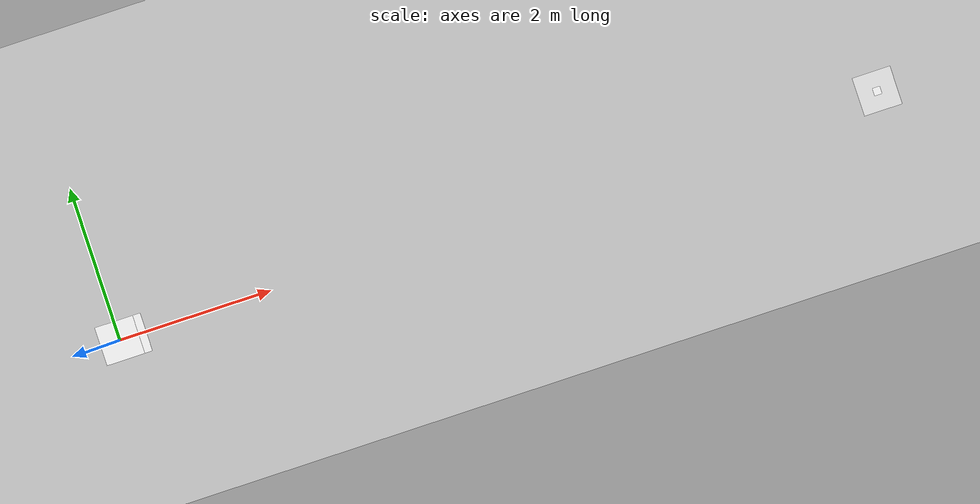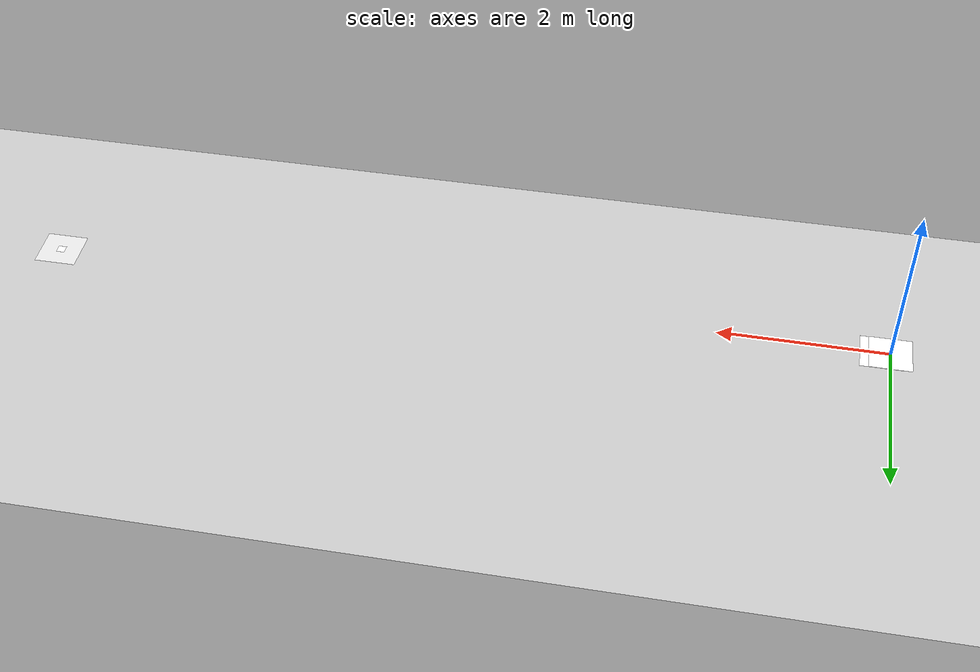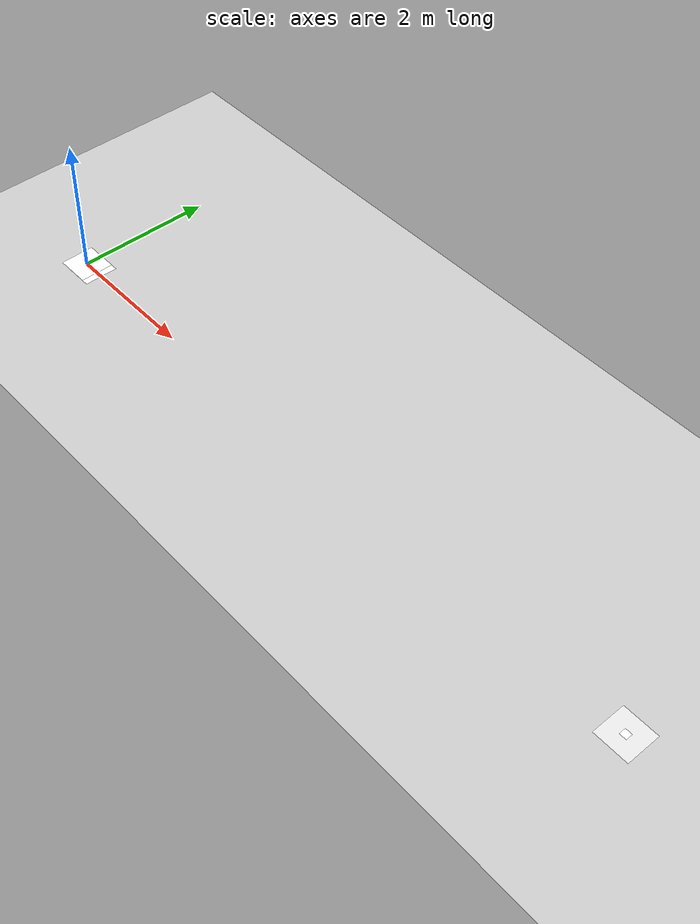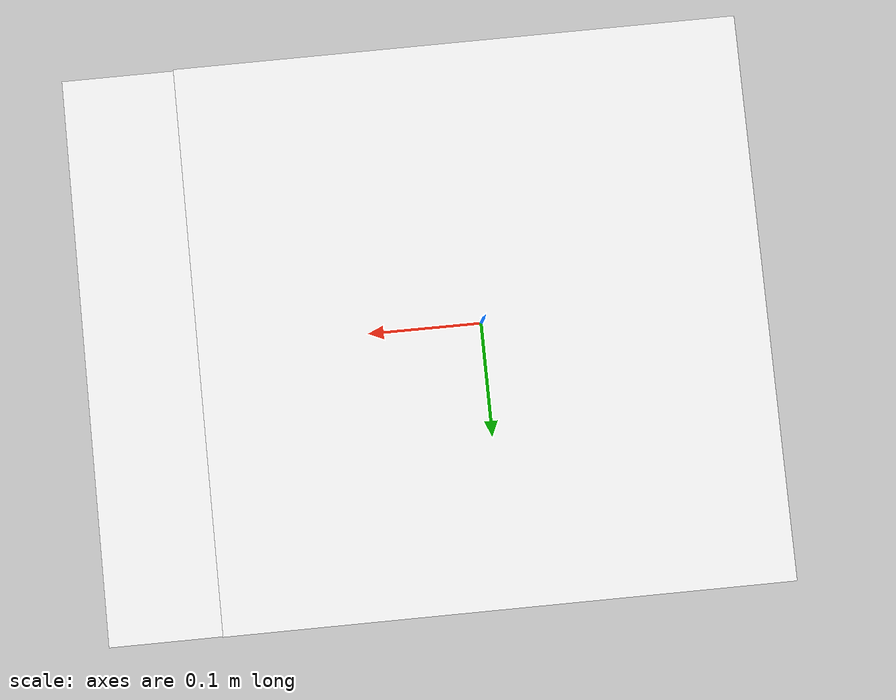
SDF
<sdf version="1.5">
 <world name="default">
  <include><uri>model://sun</uri></include>
  <include><uri>model://ground_plane</uri></include>
  <include><uri>model://aruco_visual_marker_7</uri><pose>0.1 0.0 0.005 0 0 1.57</pose></include>
  <include><uri>model://aruco_visual_marker_0</uri><pose>0.0 0.0 0.01 0 0 1.57</pose></include>
  <include><uri>model://aruco_visual_marker_1</uri><pose>10 0 0.02 0 0 1.57</pose></include>
  <physics name="default_physics" default="0" type="ode">
   <gravity>0 0 -9.8066</gravity>
   <ode>
    <solver>
     <type>quick</type>
     <iters>10</iters>
     <sor>1.3</sor>
     <use_dynamic_moi_rescaling>0</use_dynamic_moi_rescaling>
    </solver>
    <constraints>
     <cfm>0</cfm>
     <erp>0.2</erp>
     <contact_max_correcting_vel>100</contact_max_correcting_vel>
     <contact_surface_layer>0.001</contact_surface_layer>
    </constraints>
   </ode>
   <max_step_size>0.004</max_step_size>
   <real_time_factor>1</real_time_factor>
   <real_time_update_rate>250</real_time_update_rate>
   <magnetic_field>6.0e-6 2.3e-5 -4.2e-5</magnetic_field>
  </physics>
 </world>
</sdf>

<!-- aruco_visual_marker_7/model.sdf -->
<sdf version='1.5'>
  <model name='aruco_visual_marker_7'>

    <link name='marker'>
      <pose frame=''>0 0 0 0 0 0</pose>
      <visual name='visual'>
        <geometry>
          <box>
            <size>0.5 0.5 1e-5</size>
          </box>
        </geometry>
        <material>
          <script>
            <uri>model://aruco_visual_marker_7/materials/scripts</uri>
            <uri>model://aruco_visual_marker_7/materials/textures</uri>
            <name>ArucoVisualMarker7/Marker</name>
          </script>
          <ambient>1 1 1 1</ambient>
          <diffuse>1 1 1 1</diffuse>
          <specular>0 0 0 1</specular>
          <emissive>1 1 1 0</emissive>
          <shader type='vertex'>
            <normal_map>__default__</normal_map>
          </shader>
        </material>
        <pose frame=''>0 0 0 0 -0 0</pose>
        <cast_shadows>1</cast_shadows>
        <transparency>0</transparency>
      </visual>
      <collision name='collision'>
        <laser_retro>0</laser_retro>
        <max_contacts>10</max_contacts>
        <pose frame=''>0 0 0 0 -0 0</pose>
        <geometry>
          <box>
            <size>0.1778 0.1778 1e-05</size>
          </box>
        </geometry>
      </collision>
    </link>

    <link name='marker_pad'>
      <pose frame='marker'>0 0 -1e-5 0 -0 0</pose>
      <visual name='visual'>
        <geometry>
          <box>
            <size>0.1778 0.1778 1e-5</size>
          </box>
        </geometry>
        <material>
          <lighting>1</lighting>
          <script>
            <uri>file://media/materials/scripts/gazebo.material</uri>
            <name>Gazebo/White</name>
          </script>
          <ambient>0.3 0.3 0.3 1</ambient>
          <diffuse>0.7 0.7 0.7 1</diffuse>
          <specular>0.01 0.01 0.01 1</specular>
          <emissive>1 1 1 0</emissive>
          <shader type='vertex'>
            <normal_map>__default__</normal_map>
          </shader>
        </material>
        <cast_shadows>1</cast_shadows>
        <transparency>0</transparency>
      </visual>
      <collision name='collision'>
        <laser_retro>0</laser_retro>
        <max_contacts>10</max_contacts>
        <pose frame=''>0 0 0 0 -0 0</pose>
        <geometry>
          <box>
            <size>0.1778 0.1778 1e-5</size>
          </box>
        </geometry>
      </collision>
    </link>

    <joint name='marker_JOINT_marker_pad' type='revolute'>
      <parent>marker</parent>
      <child>marker_pad</child>
      <pose frame=''>0 0 0 0 -0 0</pose>
      <axis>
        <xyz>0 0 1</xyz>
        <limit>
          <upper>0</upper>
          <lower>0</lower>
        </limit>
      </axis>
    </joint>

    <static>1</static>
    <allow_auto_disable>1</allow_auto_disable>

  </model>
</sdf>

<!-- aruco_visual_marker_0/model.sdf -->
<sdf version='1.5'>
  <model name='aruco_visual_marker_0'>

    <link name='marker'>
      <pose frame=''>0 0 0 0 0 0</pose>
      <visual name='visual'>
        <geometry>
          <box>
            <size>0.5 0.5 1e-5</size>
          </box>
        </geometry>
        <material>
          <script>
            <uri>model://aruco_visual_marker_0/materials/scripts</uri>
            <uri>model://aruco_visual_marker_0/materials/textures</uri>
            <name>ArucoVisualMarker0/Marker</name>
          </script>
          <ambient>1 1 1 1</ambient>
          <diffuse>1 1 1 1</diffuse>
          <specular>0 0 0 1</specular>
          <emissive>1 1 1 0</emissive>
          <shader type='vertex'>
            <normal_map>__default__</normal_map>
          </shader>
        </material>
        <pose frame=''>0 0 0 0 -0 0</pose>
        <cast_shadows>1</cast_shadows>
        <transparency>0</transparency>
      </visual>
      <collision name='collision'>
        <laser_retro>0</laser_retro>
        <max_contacts>10</max_contacts>
        <pose frame=''>0 0 0 0 -0 0</pose>
        <geometry>
          <box>
            <size>0.1778 0.1778 1e-05</size>
          </box>
        </geometry>
      </collision>
    </link>

    <link name='marker_pad'>
      <pose frame='marker'>0 0 -1e-5 0 -0 0</pose>
      <visual name='visual'>
        <geometry>
          <box>
            <size>0.1778 0.1778 1e-5</size>
          </box>
        </geometry>
        <material>
          <lighting>1</lighting>
          <script>
            <uri>file://media/materials/scripts/gazebo.material</uri>
            <name>Gazebo/White</name>
          </script>
          <ambient>0.3 0.3 0.3 1</ambient>
          <diffuse>0.7 0.7 0.7 1</diffuse>
          <specular>0.01 0.01 0.01 1</specular>
          <emissive>1 1 1 0</emissive>
          <shader type='vertex'>
            <normal_map>__default__</normal_map>
          </shader>
        </material>
        <cast_shadows>1</cast_shadows>
        <transparency>0</transparency>
      </visual>
      <collision name='collision'>
        <laser_retro>0</laser_retro>
        <max_contacts>10</max_contacts>
        <pose frame=''>0 0 0 0 -0 0</pose>
        <geometry>
          <box>
            <size>0.1778 0.1778 1e-5</size>
          </box>
        </geometry>
      </collision>
    </link>

    <joint name='marker_JOINT_marker_pad' type='revolute'>
      <parent>marker</parent>
      <child>marker_pad</child>
      <pose frame=''>0 0 0 0 -0 0</pose>
      <axis>
        <xyz>0 0 1</xyz>
        <limit>
          <upper>0</upper>
          <lower>0</lower>
        </limit>
      </axis>
    </joint>

    <static>1</static>
    <allow_auto_disable>1</allow_auto_disable>

  </model>
</sdf>

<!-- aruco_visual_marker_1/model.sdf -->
<sdf version='1.5'>
  <model name='aruco_visual_marker_1'>

    <link name='marker'>
      <pose frame=''>0 0 0 0 0 0</pose>
      <visual name='visual'>
        <geometry>
          <box>
            <size>0.1 0.1 1e-5</size>
          </box>
        </geometry>
        <material>
          <script>
            <uri>model://aruco_visual_marker_1/materials/scripts</uri>
            <uri>model://aruco_visual_marker_1/materials/textures</uri>
            <name>ArucoVisualMarker1/Marker</name>
          </script>
          <ambient>1 1 1 1</ambient>
          <diffuse>1 1 1 1</diffuse>
          <specular>0 0 0 1</specular>
          <emissive>1 1 1 0</emissive>
          <shader type='vertex'>
            <normal_map>__default__</normal_map>
          </shader>
        </material>
        <pose frame=''>0 0 0 0 -0 0</pose>
        <cast_shadows>1</cast_shadows>
        <transparency>0</transparency>
      </visual>
      <collision name='collision'>
        <laser_retro>0</laser_retro>
        <max_contacts>10</max_contacts>
        <pose frame=''>0 0 0 0 -0 0</pose>
        <geometry>
          <box>
            <size>0.1778 0.1778 1e-05</size>
          </box>
        </geometry>
      </collision>
    </link>

    <link name='marker_pad'>
      <pose frame='marker'>0 0 -1e-5 0 -0 0</pose>
      <visual name='visual'>
        <geometry>
          <box>
            <size>0.5 0.5 1e-5</size>
          </box>
        </geometry>
        <material>
          <lighting>1</lighting>
          <script>
            <uri>file://media/materials/scripts/gazebo.material</uri>
            <name>Gazebo/White</name>
          </script>
          <ambient>0.3 0.3 0.3 1</ambient>
          <diffuse>0.7 0.7 0.7 1</diffuse>
          <specular>0.01 0.01 0.01 1</specular>
          <emissive>1 1 1 0</emissive>
          <shader type='vertex'>
            <normal_map>__default__</normal_map>
          </shader>
        </material>
        <cast_shadows>1</cast_shadows>
        <transparency>0</transparency>
      </visual>
      <collision name='collision'>
        <laser_retro>0</laser_retro>
        <max_contacts>10</max_contacts>
        <pose frame=''>0 0 0 0 -0 0</pose>
        <geometry>
          <box>
            <size>0.5 0.5 1e-5</size>
          </box>
        </geometry>
      </collision>
    </link>

    <joint name='marker_JOINT_marker_pad' type='revolute'>
      <parent>marker</parent>
      <child>marker_pad</child>
      <pose frame=''>0 0 0 0 -0 0</pose>
      <axis>
        <xyz>0 0 1</xyz>
        <limit>
          <upper>0</upper>
          <lower>0</lower>
        </limit>
      </axis>
    </joint>

    <static>1</static>
    <allow_auto_disable>1</allow_auto_disable>

  </model>
</sdf>
